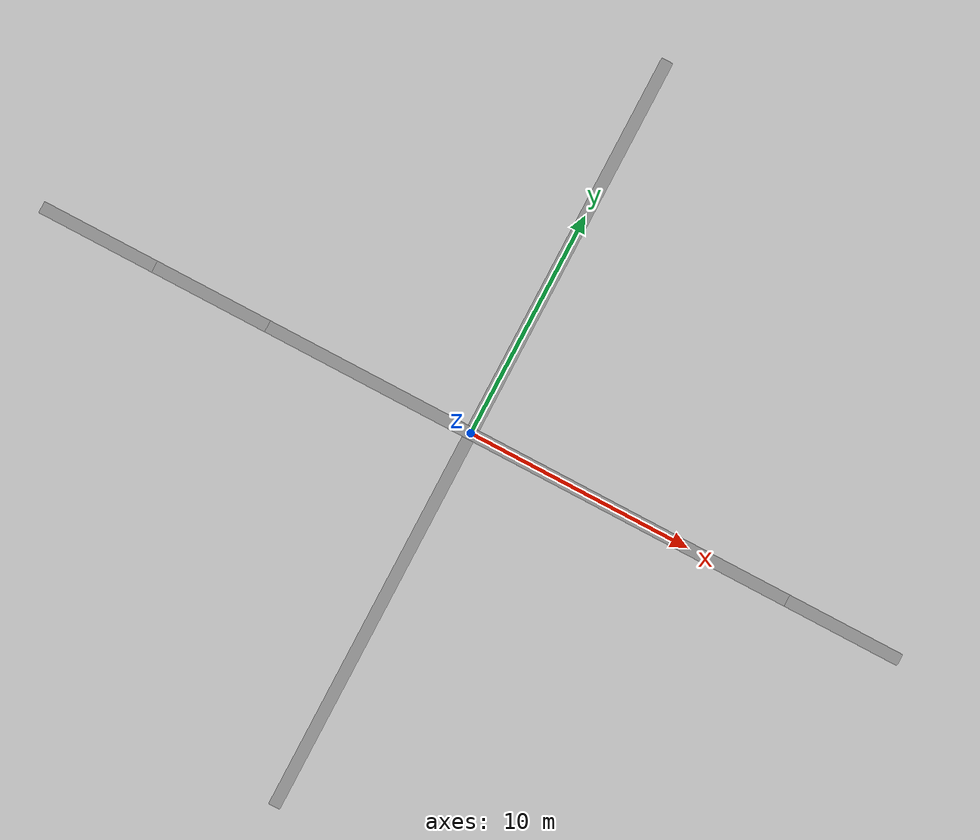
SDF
<sdf version="1.4">
 <world name="default">
  <light name="sun" type="directional">
   <pose>0 0 10 0 -0 0</pose>
   <diffuse>0.8 0.8 0.8 1</diffuse>
   <specular>0.2 0.2 0.2 1</specular>
   <attenuation>
    <range>1000</range>
    <constant>0.9</constant>
    <linear>0.01</linear>
    <quadratic>0.001</quadratic>
   </attenuation>
   <direction>0.5 0.1 -0.9</direction>
  </light>
  <model name="ground_plane">
   <static>1</static>
   <link name="link">
    <collision name="collision">
     <geometry><plane><normal>0 0 1</normal><size>100 100</size></plane></geometry>
     <surface><friction><ode><mu>100</mu><mu2>50</mu2></ode></friction></surface>
    </collision>
    <visual name="visual">
     <geometry><plane><normal>0 0 1</normal><size>100 100</size></plane></geometry>
     <material>
      <script><uri>file://media/materials/scripts/gazebo.material</uri><name>Gazebo/Grey</name></script>
     </material>
    </visual>
    <velocity_decay><linear>0</linear><angular>0</angular></velocity_decay>
   </link>
  </model>
  <physics type="ode">
   <max_step_size>0.001</max_step_size>
   <real_time_factor>1</real_time_factor>
   <real_time_update_rate>1000</real_time_update_rate>
   <gravity>0 0 -9.8</gravity>
  </physics>
  <scene>
   <ambient>0 0 0 1</ambient>
   <shadows>1</shadows>
   <grid>0</grid>
   <background>0.7 0.7 0.7 1</background>
  </scene>
  <spherical_coordinates>
   <surface_model>EARTH_WGS84</surface_model>
   <latitude_deg>0</latitude_deg>
   <longitude_deg>0</longitude_deg>
   <elevation>0</elevation>
   <heading_deg>0</heading_deg>
  </spherical_coordinates>
  <model name="parking_lane_0">
   <static>1</static>
   <link name="link">
    <pose>0 0 0.005 0 0 0</pose>
    <collision name="collision"><geometry><box><size>0.075 13 0.01</size></box></geometry></collision>
    <visual name="visual">
     <geometry><box><size>0.075 13 0.01</size></box></geometry>
     <material>
      <script><uri>file://media/materials/scripts/gazebo.material</uri><name>Gazebo/YellowGlow</name></script>
     </material>
    </visual>
    <velocity_decay><linear>0</linear><angular>0</angular></velocity_decay>
   </link>
  </model>
  <model name="parking_lane_1">
   <static>1</static>
   <link name="link">
    <pose>0 0 0.005 0 0 0</pose>
    <collision name="collision"><geometry><box><size>0.075 13 0.01</size></box></geometry></collision>
    <visual name="visual">
     <geometry><box><size>0.075 13 0.01</size></box></geometry>
     <material>
      <script><uri>file://media/materials/scripts/gazebo.material</uri><name>Gazebo/YellowGlow</name></script>
     </material>
    </visual>
    <velocity_decay><linear>0</linear><angular>0</angular></velocity_decay>
   </link>
  </model>
  <model name="parking_lane_2">
   <static>1</static>
   <link name="link">
    <pose>0 0 0.005 0 0 0</pose>
    <collision name="collision"><geometry><box><size>0.075 13 0.01</size></box></geometry></collision>
    <visual name="visual">
     <geometry><box><size>0.075 13 0.01</size></box></geometry>
     <material>
      <script><uri>file://media/materials/scripts/gazebo.material</uri><name>Gazebo/YellowGlow</name></script>
     </material>
    </visual>
    <velocity_decay><linear>0</linear><angular>0</angular></velocity_decay>
   </link>
  </model>
  <model name="parking_lane_3">
   <static>1</static>
   <link name="link">
    <pose>0 0 0.005 0 0 0</pose>
    <collision name="collision"><geometry><box><size>0.075 13 0.01</size></box></geometry></collision>
    <visual name="visual">
     <geometry><box><size>0.075 13 0.01</size></box></geometry>
     <material>
      <script><uri>file://media/materials/scripts/gazebo.material</uri><name>Gazebo/YellowGlow</name></script>
     </material>
    </visual>
    <velocity_decay><linear>0</linear><angular>0</angular></velocity_decay>
   </link>
  </model>
  <model name="parking_lane_4">
   <static>1</static>
   <link name="link">
    <pose>0 0 0.005 0 0 0</pose>
    <collision name="collision"><geometry><box><size>0.075 13 0.01</size></box></geometry></collision>
    <visual name="visual">
     <geometry><box><size>0.075 13 0.01</size></box></geometry>
     <material>
      <script><uri>file://media/materials/scripts/gazebo.material</uri><name>Gazebo/YellowGlow</name></script>
     </material>
    </visual>
    <velocity_decay><linear>0</linear><angular>0</angular></velocity_decay>
   </link>
  </model>
  <model name="parking_lane_5">
   <static>1</static>
   <link name="link">
    <pose>0 0 0.005 0 0 0</pose>
    <collision name="collision"><geometry><box><size>0.075 13 0.01</size></box></geometry></collision>
    <visual name="visual">
     <geometry><box><size>0.075 13 0.01</size></box></geometry>
     <material>
      <script><uri>file://media/materials/scripts/gazebo.material</uri><name>Gazebo/YellowGlow</name></script>
     </material>
    </visual>
    <velocity_decay><linear>0</linear><angular>0</angular></velocity_decay>
   </link>
  </model>
  <model name="parking_lane_6">
   <static>1</static>
   <link name="link">
    <pose>0 0 0.005 0 0 0</pose>
    <collision name="collision"><geometry><box><size>0.075 13 0.01</size></box></geometry></collision>
    <visual name="visual">
     <geometry><box><size>0.075 13 0.01</size></box></geometry>
     <material>
      <script><uri>file://media/materials/scripts/gazebo.material</uri><name>Gazebo/YellowGlow</name></script>
     </material>
    </visual>
    <velocity_decay><linear>0</linear><angular>0</angular></velocity_decay>
   </link>
  </model>
  <model name="grey_wall_mid">
   <static>1</static>
   <link name="link">
    <pose>0 0 1.4 0 0 0</pose>
    <collision name="collision"><geometry><box><size>18 0.5 2.8</size></box></geometry></collision>
    <visual name="visual">
     <geometry><box><size>18 0.5 2.8</size></box></geometry>
     <material>
      <script>
       <uri>model://grey_wall/materials/scripts</uri>
       <uri>model://grey_wall/materials/textures</uri>
       <name>vrc/grey_wall</name>
      </script>
     </material>
    </visual>
    <velocity_decay><linear>0</linear><angular>0</angular></velocity_decay>
   </link>
  </model>
  <model name="grey_wall_1">
   <static>1</static>
   <link name="link">
    <pose>0 0 1.4 0 0 0</pose>
    <collision name="collision"><geometry><box><size>28 0.5 2.8</size></box></geometry></collision>
    <visual name="visual">
     <geometry><box><size>28 0.5 2.8</size></box></geometry>
     <material>
      <script>
       <uri>model://grey_wall/materials/scripts</uri>
       <uri>model://grey_wall/materials/textures</uri>
       <name>vrc/grey_wall</name>
      </script>
     </material>
    </visual>
    <velocity_decay><linear>0</linear><angular>0</angular></velocity_decay>
   </link>
  </model>
  <model name="grey_wall_2">
   <static>1</static>
   <link name="link">
    <pose>0 0 1.4 0 0 0</pose>
    <collision name="collision"><geometry><box><size>38 0.5 2.8</size></box></geometry></collision>
    <visual name="visual">
     <geometry><box><size>38 0.5 2.8</size></box></geometry>
     <material>
      <script>
       <uri>model://grey_wall/materials/scripts</uri>
       <uri>model://grey_wall/materials/textures</uri>
       <name>vrc/grey_wall</name>
      </script>
     </material>
    </visual>
    <velocity_decay><linear>0</linear><angular>0</angular></velocity_decay>
   </link>
  </model>
  <model name="grey_wall_3">
   <static>1</static>
   <link name="link">
    <pose>0 0 1.4 0 0 0</pose>
    <collision name="collision"><geometry><box><size>0.5 33 2.8</size></box></geometry></collision>
    <visual name="visual">
     <geometry><box><size>0.5 33 2.8</size></box></geometry>
     <material>
      <script>
       <uri>model://grey_wall/materials/scripts</uri>
       <uri>model://grey_wall/materials/textures</uri>
       <name>vrc/grey_wall</name>
      </script>
     </material>
    </visual>
    <velocity_decay><linear>0</linear><angular>0</angular></velocity_decay>
   </link>
  </model>
  <model name="grey_wall_4">
   <static>1</static>
   <link name="link">
    <pose>0 0 1.4 0 0 0</pose>
    <collision name="collision"><geometry><box><size>0.5 33 2.8</size></box></geometry></collision>
    <visual name="visual">
     <geometry><box><size>0.5 33 2.8</size></box></geometry>
     <material>
      <script>
       <uri>model://grey_wall/materials/scripts</uri>
       <uri>model://grey_wall/materials/textures</uri>
       <name>vrc/grey_wall</name>
      </script>
     </material>
    </visual>
    <velocity_decay><linear>0</linear><angular>0</angular></velocity_decay>
   </link>
  </model>
 </world>
</sdf>
